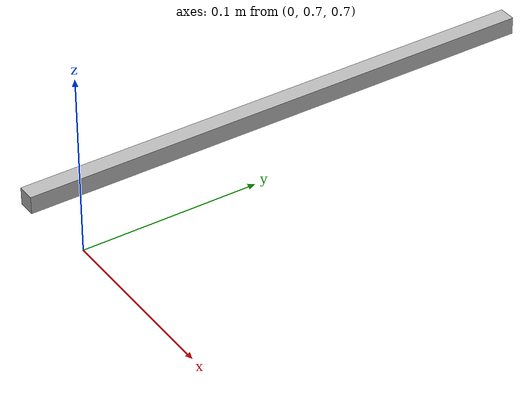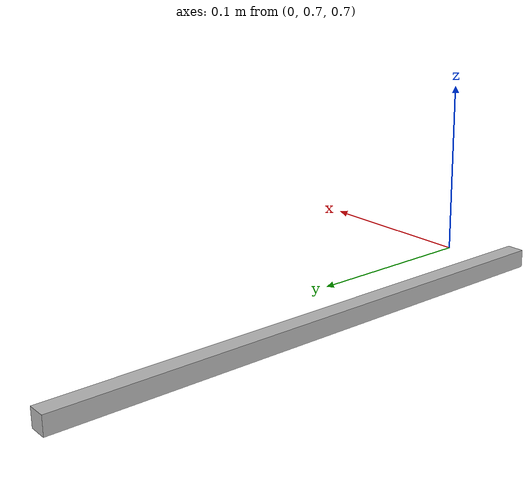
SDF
<?xml version="1.0"?>
<sdf version="1.6">
  <world name="default">
    <include>
      <uri>model://ground_plane</uri>
    </include>

     <include>
      <uri>model://sun</uri>
    </include>

    <model name="box">
      <pose>-0.045 0.843470 0.7052 0 0 0</pose>
      <static>true</static>
      <link name="base_link">
        <collision name="box_collision">
          <geometry>
            <box>
              <size>0.01 0.3 0.01</size>
            </box>
          </geometry>
        </collision>

        <visual name="visual">
          <geometry>
            <box>
              <size>0.01 0.3 0.01</size>
            </box>
          </geometry>
        </visual>
        <sensor name='my_contact' type='contact'>
        <update_rate> 100 </update_rate>
        <always_on>1</always_on>
          <contact>
            <collision>box_collision</collision>
            <topic>/sensor_contact</topic>
          </contact>
            <plugin name="gazebo_ros_bumper_controller" filename="libgazebo_ros_bumper.so">
                <alwaysOn>true</alwaysOn>
                <updateRate>100</updateRate>
                <bumperTopicName>/sensor_contact</bumperTopicName>
                <frameName>world</frameName>
            </plugin>
        </sensor>
      </link>
    </model>

 	<plugin name="ros_link_attacher_plugin" filename="libgazebo_ros_link_attacher.so"/>

  </world>
</sdf>
